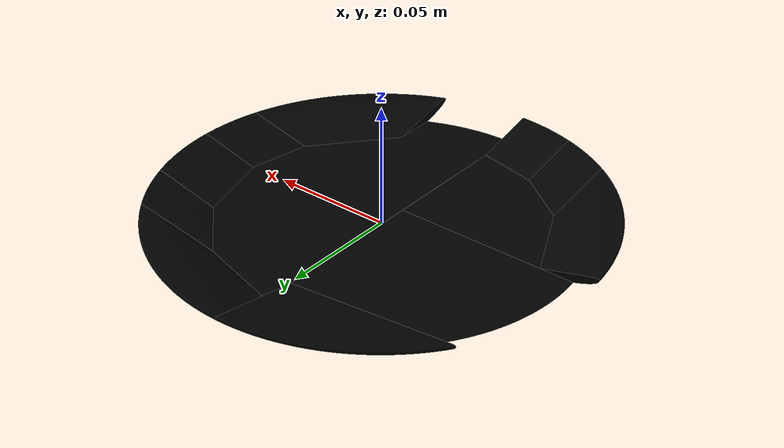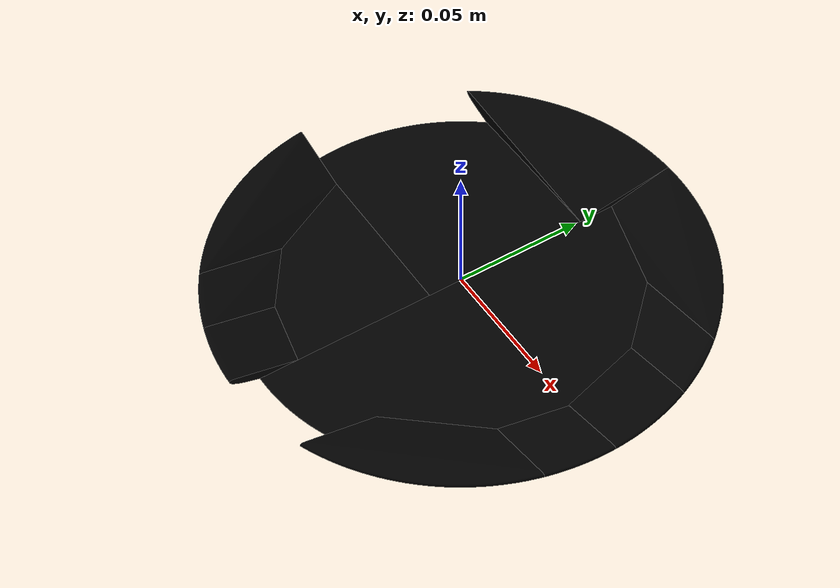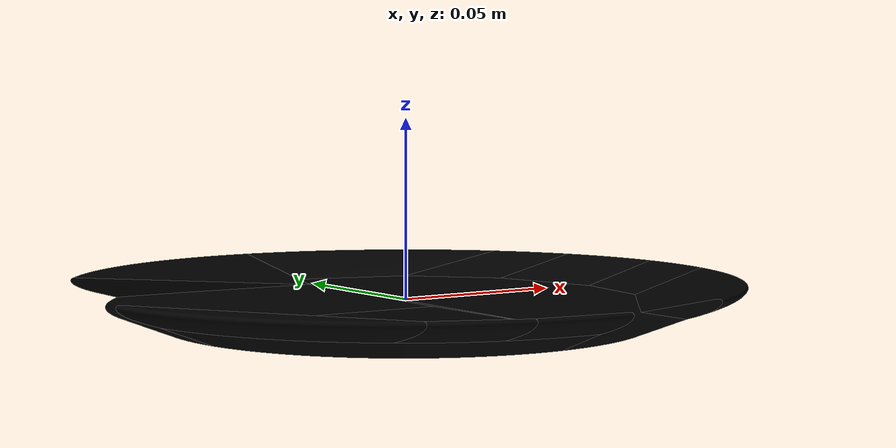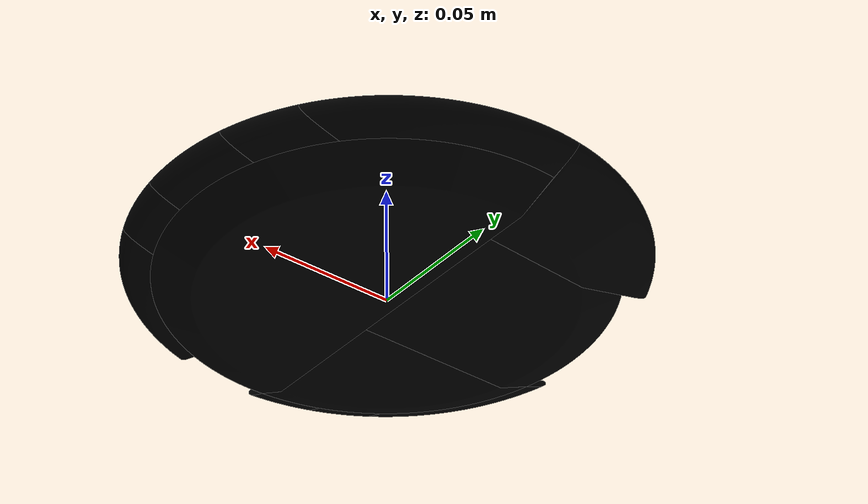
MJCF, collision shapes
<mujoco model="plate_49">
  <asset>
    <mesh file="visual/model_normalized_0.obj" name="model_normalized_0_vis" scale="0.185 0.185 0.185" refquat="1.0 0.0 0.0 0.0" />
    <texture type="2d" name="image0" file="visual/image0.png" />
    <material name="default.011" texture="image0" specular="0.5" shininess="0.25" />
    <mesh file="collision/model_collision_0.obj" name="model_collision_0" scale="0.185 0.185 0.185" refquat="1.0 0.0 0.0 0.0" />
    <mesh file="collision/model_collision_1.obj" name="model_collision_1" scale="0.185 0.185 0.185" refquat="1.0 0.0 0.0 0.0" />
    <mesh file="collision/model_collision_2.obj" name="model_collision_2" scale="0.185 0.185 0.185" refquat="1.0 0.0 0.0 0.0" />
    <mesh file="collision/model_collision_3.obj" name="model_collision_3" scale="0.185 0.185 0.185" refquat="1.0 0.0 0.0 0.0" />
    <mesh file="collision/model_collision_4.obj" name="model_collision_4" scale="0.185 0.185 0.185" refquat="1.0 0.0 0.0 0.0" />
    <mesh file="collision/model_collision_5.obj" name="model_collision_5" scale="0.185 0.185 0.185" refquat="1.0 0.0 0.0 0.0" />
    <mesh file="collision/model_collision_6.obj" name="model_collision_6" scale="0.185 0.185 0.185" refquat="1.0 0.0 0.0 0.0" />
    <mesh file="collision/model_collision_7.obj" name="model_collision_7" scale="0.185 0.185 0.185" refquat="1.0 0.0 0.0 0.0" />
    <mesh file="collision/model_collision_8.obj" name="model_collision_8" scale="0.185 0.185 0.185" refquat="1.0 0.0 0.0 0.0" />
    <mesh file="collision/model_collision_9.obj" name="model_collision_9" scale="0.185 0.185 0.185" refquat="1.0 0.0 0.0 0.0" />
    <mesh file="collision/model_collision_10.obj" name="model_collision_10" scale="0.185 0.185 0.185" refquat="1.0 0.0 0.0 0.0" />
    <mesh file="collision/model_collision_11.obj" name="model_collision_11" scale="0.185 0.185 0.185" refquat="1.0 0.0 0.0 0.0" />
  </asset>
  <default>
    <default class="region">
      <geom group="1" conaffinity="0" contype="0" rgba="0 1 0 0" />
    </default>
  </default>
  <worldbody>
    <body>
      <body name="object">
        <geom density="0" type="mesh" mesh="model_normalized_0_vis" conaffinity="0" contype="0" group="2" material="default.011" mass="0.075" />
        <geom class="region" name="reg_bbox" type="box" pos="0.0 -0.0003813044250000014 0.000522943200000001" size="0.0915027501 0.0909099583 0.0074930846" />
        <geom solimp="0.998 0.998 0.001" solref="0.004 1" density="0" friction="0.6 0.03 0.003" type="mesh" group="3" rgba="0 0 0 0" mesh="model_collision_0" condim="6" priority="1" />
        <geom solimp="0.998 0.998 0.001" solref="0.004 1" density="0" friction="0.6 0.03 0.003" type="mesh" group="3" rgba="0 0 0 0" mesh="model_collision_1" condim="6" priority="1" />
        <geom solimp="0.998 0.998 0.001" solref="0.004 1" density="0" friction="0.6 0.03 0.003" type="mesh" group="3" rgba="0 0 0 0" mesh="model_collision_2" condim="6" priority="1" />
        <geom solimp="0.998 0.998 0.001" solref="0.004 1" density="0" friction="0.6 0.03 0.003" type="mesh" group="3" rgba="0 0 0 0" mesh="model_collision_3" condim="6" priority="1" />
        <geom solimp="0.998 0.998 0.001" solref="0.004 1" density="0" friction="0.6 0.03 0.003" type="mesh" group="3" rgba="0 0 0 0" mesh="model_collision_4" condim="6" priority="1" />
        <geom solimp="0.998 0.998 0.001" solref="0.004 1" density="0" friction="0.6 0.03 0.003" type="mesh" group="3" rgba="0 0 0 0" mesh="model_collision_5" condim="6" priority="1" />
        <geom solimp="0.998 0.998 0.001" solref="0.004 1" density="0" friction="0.6 0.03 0.003" type="mesh" group="3" rgba="0 0 0 0" mesh="model_collision_6" condim="6" priority="1" />
        <geom solimp="0.998 0.998 0.001" solref="0.004 1" density="0" friction="0.6 0.03 0.003" type="mesh" group="3" rgba="0 0 0 0" mesh="model_collision_7" condim="6" priority="1" />
        <geom solimp="0.998 0.998 0.001" solref="0.004 1" density="0" friction="0.6 0.03 0.003" type="mesh" group="3" rgba="0 0 0 0" mesh="model_collision_8" condim="6" priority="1" />
        <geom solimp="0.998 0.998 0.001" solref="0.004 1" density="0" friction="0.6 0.03 0.003" type="mesh" group="3" rgba="0 0 0 0" mesh="model_collision_9" condim="6" priority="1" />
        <geom solimp="0.998 0.998 0.001" solref="0.004 1" density="0" friction="0.6 0.03 0.003" type="mesh" group="3" rgba="0 0 0 0" mesh="model_collision_10" condim="6" priority="1" />
        <geom solimp="0.998 0.998 0.001" solref="0.004 1" density="0" friction="0.6 0.03 0.003" type="mesh" group="3" rgba="0 0 0 0" mesh="model_collision_11" condim="6" priority="1" />
      </body>
    </body>
  </worldbody>
</mujoco>
